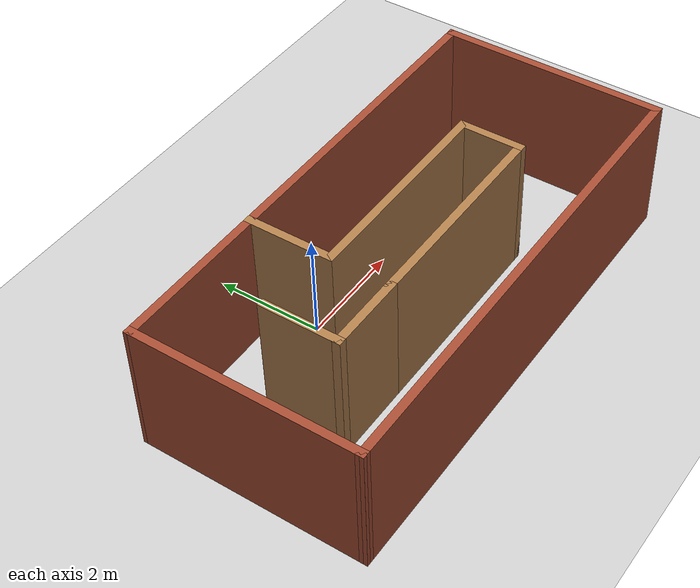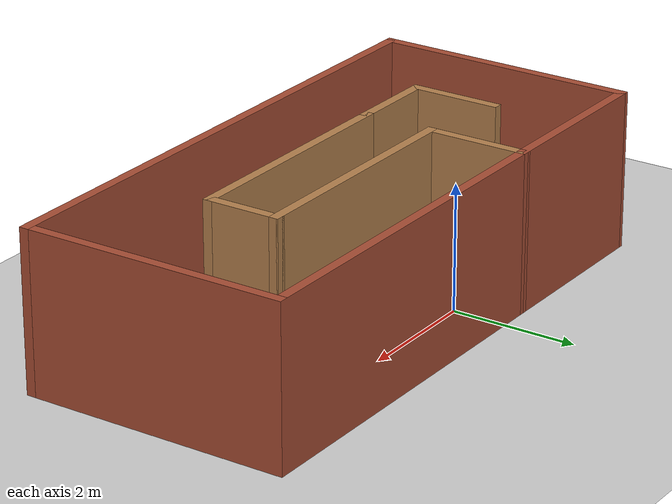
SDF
<sdf version="1.7">
 <world name="default">
  <light name="sun" type="directional">
   <pose>0 0 10 0 -0 0</pose>
   <diffuse>0.8 0.8 0.8 1</diffuse>
   <specular>0.2 0.2 0.2 1</specular>
   <attenuation>
    <range>1000</range>
    <constant>0.9</constant>
    <linear>0.01</linear>
    <quadratic>0.001</quadratic>
   </attenuation>
   <direction>-0.5 0.1 -0.9</direction>
   <spot><inner_angle>0</inner_angle><outer_angle>0</outer_angle><falloff>0</falloff></spot>
  </light>
  <model name="ground_plane">
   <static>1</static>
   <link name="link">
    <collision name="collision">
     <geometry><plane><normal>0 0 1</normal><size>100 100</size></plane></geometry>
     <surface><friction><ode><mu>100</mu><mu2>50</mu2></ode></friction></surface>
    </collision>
    <visual name="visual">
     <cast_shadows>0</cast_shadows>
     <geometry><plane><normal>0 0 1</normal><size>100 100</size></plane></geometry>
     <material>
      <script><uri>file://media/materials/scripts/gazebo.material</uri><name>Gazebo/Grey</name></script>
     </material>
    </visual>
   </link>
  </model>
  <gravity>0 0 -9.8</gravity>
  <magnetic_field>6e-06 2.3e-05 -4.2e-05</magnetic_field>
  <atmosphere type="adiabatic"/>
  <physics type="ode">
   <max_step_size>0.001</max_step_size>
   <real_time_factor>1</real_time_factor>
   <real_time_update_rate>1000</real_time_update_rate>
  </physics>
  <scene><ambient>0.4 0.4 0.4 1</ambient><background>0.7 0.7 0.7 1</background><shadows>1</shadows></scene>
  <spherical_coordinates>
   <surface_model>EARTH_WGS84</surface_model>
   <latitude_deg>0</latitude_deg>
   <longitude_deg>0</longitude_deg>
   <elevation>0</elevation>
   <heading_deg>0</heading_deg>
  </spherical_coordinates>
  <model name="basic_wall">
   <pose>1.05152 -0.334107 0 0 -0 0</pose>
   <link name="Wall_0">
    <collision name="Wall_0_Collision">
     <geometry><box><size>1.6971 0.15 2.5</size></box></geometry>
     <pose>0 0 1.25 0 -0 0</pose>
    </collision>
    <visual name="Wall_0_Visual">
     <pose>0 0 1.25 0 -0 0</pose>
     <geometry><box><size>1.6971 0.15 2.5</size></box></geometry>
     <material>
      <script><uri>file://media/materials/scripts/gazebo.material</uri><name>Gazebo/Wood</name></script>
      <ambient>1 1 1 1</ambient>
     </material>
     <meta><layer>0</layer></meta>
    </visual>
    <pose>-1.55785 0.347806 0 0 -0 -1.5708</pose>
   </link>
   <link name="Wall_1">
    <collision name="Wall_1_Collision">
     <geometry><box><size>4 0.15 2.5</size></box></geometry>
     <pose>0 0 1.25 0 -0 0</pose>
    </collision>
    <visual name="Wall_1_Visual">
     <pose>0 0 1.25 0 -0 0</pose>
     <geometry><box><size>4 0.15 2.5</size></box></geometry>
     <material>
      <script><uri>file://media/materials/scripts/gazebo.material</uri><name>Gazebo/Wood</name></script>
      <ambient>1 1 1 1</ambient>
     </material>
     <meta><layer>0</layer></meta>
    </visual>
    <pose>0.367152 -0.425745 0 0 -0 0</pose>
   </link>
   <link name="Wall_10">
    <collision name="Wall_10_Collision">
     <geometry><box><size>3 0.15 2.5</size></box></geometry>
     <pose>0 0 1.25 0 -0 0</pose>
    </collision>
    <visual name="Wall_10_Visual">
     <pose>0 0 1.25 0 -0 0</pose>
     <geometry><box><size>3 0.15 2.5</size></box></geometry>
     <material>
      <script><uri>file://media/materials/scripts/gazebo.material</uri><name>Gazebo/Bricks</name></script>
      <ambient>1 1 1 1</ambient>
     </material>
     <meta><layer>0</layer></meta>
    </visual>
    <pose>-2.98285 1.12136 0 0 -0 0</pose>
   </link>
   <link name="Wall_12">
    <collision name="Wall_12_Collision">
     <geometry><box><size>1.5 0.15 2.5</size></box></geometry>
     <pose>0 0 1.25 0 -0 0</pose>
    </collision>
    <visual name="Wall_12_Visual">
     <pose>0 0 1.25 0 -0 0</pose>
     <geometry><box><size>1.5 0.15 2.5</size></box></geometry>
     <material>
      <script><uri>file://media/materials/scripts/gazebo.material</uri><name>Gazebo/Wood</name></script>
      <ambient>1 1 1 1</ambient>
     </material>
     <meta><layer>0</layer></meta>
    </visual>
    <pose>-2.23285 -1.52574 0 0 -0 3.14159</pose>
   </link>
   <link name="Wall_13">
    <collision name="Wall_13_Collision">
     <geometry><box><size>1.5 0.15 2.5</size></box></geometry>
     <pose>0 0 1.25 0 -0 0</pose>
    </collision>
    <visual name="Wall_13_Visual">
     <pose>0 0 1.25 0 -0 0</pose>
     <geometry><box><size>1.5 0.15 2.5</size></box></geometry>
     <material>
      <script><uri>file://media/materials/scripts/gazebo.material</uri><name>Gazebo/Wood</name></script>
      <ambient>1 1 1 1</ambient>
     </material>
     <meta><layer>0</layer></meta>
    </visual>
    <pose>-2.90785 -0.850744 0 0 -0 1.5708</pose>
   </link>
   <link name="Wall_2">
    <collision name="Wall_2_Collision">
     <geometry><box><size>1.25 0.15 2.5</size></box></geometry>
     <pose>0 0 1.25 0 -0 0</pose>
    </collision>
    <visual name="Wall_2_Visual">
     <pose>0 0 1.25 0 -0 0</pose>
     <geometry><box><size>1.25 0.15 2.5</size></box></geometry>
     <material>
      <script><uri>file://media/materials/scripts/gazebo.material</uri><name>Gazebo/Wood</name></script>
      <ambient>1 1 1 1</ambient>
     </material>
     <meta><layer>0</layer></meta>
    </visual>
    <pose>2.29215 -0.975745 0 0 -0 -1.5708</pose>
   </link>
   <link name="Wall_3">
    <collision name="Wall_3_Collision">
     <geometry><box><size>4 0.15 2.5</size></box></geometry>
     <pose>0 0 1.25 0 -0 0</pose>
    </collision>
    <visual name="Wall_3_Visual">
     <pose>0 0 1.25 0 -0 0</pose>
     <geometry><box><size>4 0.15 2.5</size></box></geometry>
     <material>
      <script><uri>file://media/materials/scripts/gazebo.material</uri><name>Gazebo/Wood</name></script>
      <ambient>1 1 1 1</ambient>
     </material>
     <meta><layer>0</layer></meta>
    </visual>
    <pose>0.367152 -1.52574 0 0 -0 3.14159</pose>
   </link>
   <link name="Wall_5">
    <collision name="Wall_5_Collision">
     <geometry><box><size>6.133 0.15 2.5</size></box></geometry>
     <pose>0 0 1.25 0 -0 0</pose>
    </collision>
    <visual name="Wall_5_Visual">
     <pose>0 0 1.25 0 -0 0</pose>
     <geometry><box><size>6.133 0.15 2.5</size></box></geometry>
     <material>
      <script><uri>file://media/materials/scripts/gazebo.material</uri><name>Gazebo/Bricks</name></script>
      <ambient>1 1 1 1</ambient>
     </material>
     <meta><layer>0</layer></meta>
    </visual>
    <pose>1.43365 1.12121 0 0 -0 -5e-05</pose>
   </link>
   <link name="Wall_6">
    <collision name="Wall_6_Collision">
     <geometry><box><size>4.25 0.15 2.5</size></box></geometry>
     <pose>0 0 1.25 0 -0 0</pose>
    </collision>
    <visual name="Wall_6_Visual">
     <pose>0 0 1.25 0 -0 0</pose>
     <geometry><box><size>4.25 0.15 2.5</size></box></geometry>
     <material>
      <script><uri>file://media/materials/scripts/gazebo.material</uri><name>Gazebo/Bricks</name></script>
      <ambient>1 1 1 1</ambient>
     </material>
     <meta><layer>0</layer></meta>
    </visual>
    <pose>4.42515 -0.928945 0 0 -0 -1.5708</pose>
   </link>
   <link name="Wall_8">
    <collision name="Wall_8_Collision">
     <geometry><box><size>9 0.15 2.5</size></box></geometry>
     <pose>0 0 1.25 0 -0 0</pose>
    </collision>
    <visual name="Wall_8_Visual">
     <pose>0 0 1.25 0 -0 0</pose>
     <geometry><box><size>9 0.15 2.5</size></box></geometry>
     <material>
      <script><uri>file://media/materials/scripts/gazebo.material</uri><name>Gazebo/Bricks</name></script>
      <ambient>1 1 1 1</ambient>
     </material>
     <meta><layer>0</layer></meta>
    </visual>
    <pose>0.000153 -2.97894 0 0 -0 3.14159</pose>
   </link>
   <link name="Wall_9">
    <collision name="Wall_9_Collision">
     <geometry><box><size>4.25034 0.15 2.5</size></box></geometry>
     <pose>0 0 1.25 0 -0 0</pose>
    </collision>
    <visual name="Wall_9_Visual">
     <pose>0 0 1.25 0 -0 0</pose>
     <geometry><box><size>4.25034 0.15 2.5</size></box></geometry>
     <material>
      <script><uri>file://media/materials/scripts/gazebo.material</uri><name>Gazebo/Bricks</name></script>
      <ambient>1 1 1 1</ambient>
     </material>
     <meta><layer>0</layer></meta>
    </visual>
    <pose>-4.41635 -0.928795 0 0 -0 1.56665</pose>
   </link>
   <static>1</static>
  </model>
 </world>
</sdf>
